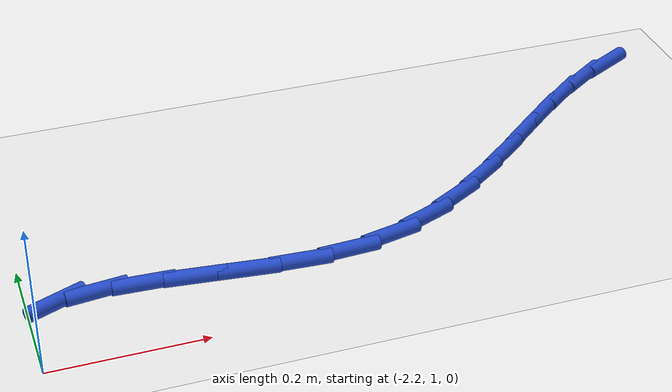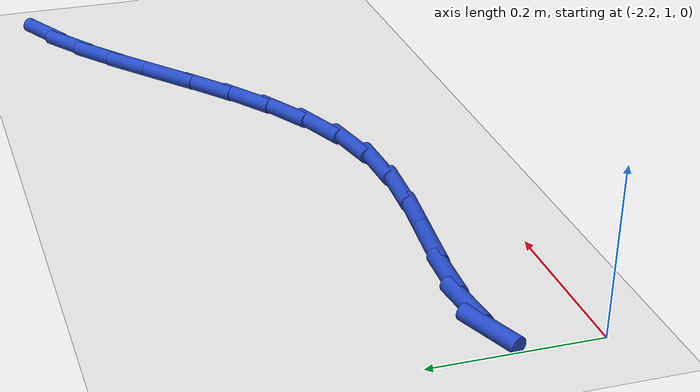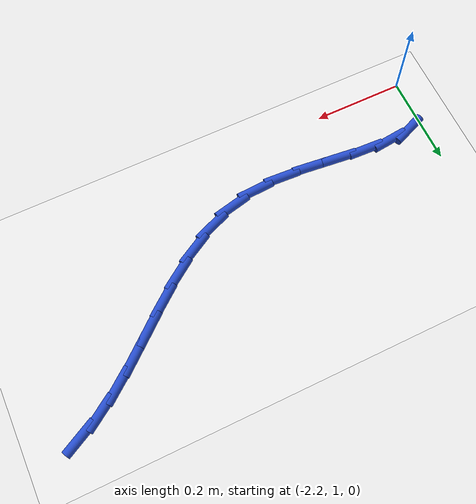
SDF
<sdf version="1.6">
 <world name="default">
  <model name="ground_plane">
   <static>1</static>
   <link name="link">
    <collision name="collision">
     <geometry><plane><normal>0 0 1</normal><size>100 100</size></plane></geometry>
     <surface><friction><ode><mu>100</mu><mu2>50</mu2></ode></friction></surface>
    </collision>
    <visual name="visual">
     <cast_shadows>0</cast_shadows>
     <geometry><plane><normal>0 0 1</normal><size>100 100</size></plane></geometry>
     <material>
      <script><uri>file://media/materials/scripts/gazebo.material</uri><name>Gazebo/WhiteGlow</name></script>
     </material>
    </visual>
   </link>
  </model>
  <model name="line">
   <link name="link_34">
    <pose>-1.277492333680312 1.4284284520716457 0.01 0 1.57 0.48630207867308334</pose>
    <collision name="collision">
     <geometry><cylinder><radius>0.01</radius><length>0.08</length></cylinder></geometry>
    </collision>
    <visual name="visual">
     <material>
      <script><name>Gazebo/Blue</name><uri>file://media/materials/scripts/gazebo.material</uri></script>
     </material>
     <geometry><cylinder><radius>0.01</radius><length>0.08</length></cylinder></geometry>
    </visual>
   </link>
   <link name="link_35">
    <pose>-1.328409103685491 1.4015114296683824 0.01 0 1.57 0.5987223878394674</pose>
    <collision name="collision">
     <geometry><cylinder><radius>0.01</radius><length>0.08</length></cylinder></geometry>
    </collision>
    <visual name="visual">
     <material>
      <script><name>Gazebo/Blue</name><uri>file://media/materials/scripts/gazebo.material</uri></script>
     </material>
     <geometry><cylinder><radius>0.01</radius><length>0.08</length></cylinder></geometry>
    </visual>
   </link>
   <link name="link_36">
    <pose>-1.3776648218462089 1.3679060827481828 0.01 0 1.57 0.6699513277519925</pose>
    <collision name="collision">
     <geometry><cylinder><radius>0.01</radius><length>0.08</length></cylinder></geometry>
    </collision>
    <visual name="visual">
     <material>
      <script><name>Gazebo/Blue</name><uri>file://media/materials/scripts/gazebo.material</uri></script>
     </material>
     <geometry><cylinder><radius>0.01</radius><length>0.08</length></cylinder></geometry>
    </visual>
   </link>
   <link name="link_37">
    <pose>-1.4259525944657796 1.3296537186178912 0.01 0 1.57 0.7050630677154315</pose>
    <collision name="collision">
     <geometry><cylinder><radius>0.01</radius><length>0.08</length></cylinder></geometry>
    </collision>
    <visual name="visual">
     <material>
      <script><name>Gazebo/Blue</name><uri>file://media/materials/scripts/gazebo.material</uri></script>
     </material>
     <geometry><cylinder><radius>0.01</radius><length>0.08</length></cylinder></geometry>
    </visual>
   </link>
   <link name="link_38">
    <pose>-1.473965527847517 1.2887956445843511 0.01 0 1.57 0.7075542569212673</pose>
    <collision name="collision">
     <geometry><cylinder><radius>0.01</radius><length>0.08</length></cylinder></geometry>
    </collision>
    <visual name="visual">
     <material>
      <script><name>Gazebo/Blue</name><uri>file://media/materials/scripts/gazebo.material</uri></script>
     </material>
     <geometry><cylinder><radius>0.01</radius><length>0.08</length></cylinder></geometry>
    </visual>
   </link>
   <link name="link_39">
    <pose>-1.5223967282947348 1.2473731679544067 0.01 0 1.57 0.6785632128013085</pose>
    <collision name="collision">
     <geometry><cylinder><radius>0.01</radius><length>0.08</length></cylinder></geometry>
    </collision>
    <visual name="visual">
     <material>
      <script><name>Gazebo/Blue</name><uri>file://media/materials/scripts/gazebo.material</uri></script>
     </material>
     <geometry><cylinder><radius>0.01</radius><length>0.08</length></cylinder></geometry>
    </visual>
   </link>
   <link name="link_40">
    <pose>-1.571939302110747 1.2074275960349026 0.01 0 1.57 0.6170296724437282</pose>
    <collision name="collision">
     <geometry><cylinder><radius>0.01</radius><length>0.08</length></cylinder></geometry>
    </collision>
    <visual name="visual">
     <material>
      <script><name>Gazebo/Blue</name><uri>file://media/materials/scripts/gazebo.material</uri></script>
     </material>
     <geometry><cylinder><radius>0.01</radius><length>0.08</length></cylinder></geometry>
    </visual>
   </link>
   <link name="link_41">
    <pose>-1.6232863555988675 1.1710002361326823 0.01 0 1.57 0.5205376974459534</pose>
    <collision name="collision">
     <geometry><cylinder><radius>0.01</radius><length>0.08</length></cylinder></geometry>
    </collision>
    <visual name="visual">
     <material>
      <script><name>Gazebo/Blue</name><uri>file://media/materials/scripts/gazebo.material</uri></script>
     </material>
     <geometry><cylinder><radius>0.01</radius><length>0.08</length></cylinder></geometry>
    </visual>
   </link>
   <link name="link_42">
    <pose>-1.6771309950624103 1.140132395554589 0.01 0 1.57 0.3873327205778597</pose>
    <collision name="collision">
     <geometry><cylinder><radius>0.01</radius><length>0.08</length></cylinder></geometry>
    </collision>
    <visual name="visual">
     <material>
      <script><name>Gazebo/Blue</name><uri>file://media/materials/scripts/gazebo.material</uri></script>
     </material>
     <geometry><cylinder><radius>0.01</radius><length>0.08</length></cylinder></geometry>
    </visual>
   </link>
   <link name="link_43">
    <pose>-1.7341663268046885 1.1168653816074676 0.01 0 1.57 0.22008268704885672</pose>
    <collision name="collision">
     <geometry><cylinder><radius>0.01</radius><length>0.08</length></cylinder></geometry>
    </collision>
    <visual name="visual">
     <material>
      <script><name>Gazebo/Blue</name><uri>file://media/materials/scripts/gazebo.material</uri></script>
     </material>
     <geometry><cylinder><radius>0.01</radius><length>0.08</length></cylinder></geometry>
    </visual>
   </link>
   <link name="link_44">
    <pose>-1.795084010007401 1.1032377154445516 0.01 0 1.57 0.05215917221528918</pose>
    <collision name="collision">
     <geometry><cylinder><radius>0.01</radius><length>0.08</length></cylinder></geometry>
    </collision>
    <visual name="visual">
     <material>
      <script><name>Gazebo/Blue</name><uri>file://media/materials/scripts/gazebo.material</uri></script>
     </material>
     <geometry><cylinder><radius>0.01</radius><length>0.08</length></cylinder></geometry>
    </visual>
   </link>
   <link name="link_45">
    <pose>-1.8598327019083662 1.0998574112550337 0.01 0 1.57 -0.05574662256063953</pose>
    <collision name="collision">
     <geometry><cylinder><radius>0.01</radius><length>0.08</length></cylinder></geometry>
    </collision>
    <visual name="visual">
     <material>
      <script><name>Gazebo/Blue</name><uri>file://media/materials/scripts/gazebo.material</uri></script>
     </material>
     <geometry><cylinder><radius>0.01</radius><length>0.08</length></cylinder></geometry>
    </visual>
   </link>
   <link name="link_46">
    <pose>-1.9264081954051893 1.1035726195271889 0.01 0 1.57 -0.1062631666495172</pose>
    <collision name="collision">
     <geometry><cylinder><radius>0.01</radius><length>0.08</length></cylinder></geometry>
    </collision>
    <visual name="visual">
     <material>
      <script><name>Gazebo/Blue</name><uri>file://media/materials/scripts/gazebo.material</uri></script>
     </material>
     <geometry><cylinder><radius>0.01</radius><length>0.08</length></cylinder></geometry>
    </visual>
   </link>
   <link name="link_47">
    <pose>-1.9924892763402806 1.1106211547954807 0.01 0 1.57 -0.10425399809433808</pose>
    <collision name="collision">
     <geometry><cylinder><radius>0.01</radius><length>0.08</length></cylinder></geometry>
    </collision>
    <visual name="visual">
     <material>
      <script><name>Gazebo/Blue</name><uri>file://media/materials/scripts/gazebo.material</uri></script>
     </material>
     <geometry><cylinder><radius>0.01</radius><length>0.08</length></cylinder></geometry>
    </visual>
   </link>
   <link name="link_48">
    <pose>-2.0557547305560524 1.1172408315943734 0.01 0 1.57 -0.04175604861799084</pose>
    <collision name="collision">
     <geometry><cylinder><radius>0.01</radius><length>0.08</length></cylinder></geometry>
    </collision>
    <visual name="visual">
     <material>
      <script><name>Gazebo/Blue</name><uri>file://media/materials/scripts/gazebo.material</uri></script>
     </material>
     <geometry><cylinder><radius>0.01</radius><length>0.08</length></cylinder></geometry>
    </visual>
   </link>
   <link name="link_49">
    <pose>-2.113883343894918 1.119669464458332 0.01 0 1.57 0.10860074115715232</pose>
    <collision name="collision">
     <geometry><cylinder><radius>0.01</radius><length>0.08</length></cylinder></geometry>
    </collision>
    <visual name="visual">
     <material>
      <script><name>Gazebo/Blue</name><uri>file://media/materials/scripts/gazebo.material</uri></script>
     </material>
     <geometry><cylinder><radius>0.01</radius><length>0.08</length></cylinder></geometry>
    </visual>
   </link>
   <link name="link_50">
    <pose>-2.1645539021992897 1.1141448679218202 0.01 0 1.57 0.38829219019440764</pose>
    <collision name="collision">
     <geometry><cylinder><radius>0.01</radius><length>0.08</length></cylinder></geometry>
    </collision>
    <visual name="visual">
     <material>
      <script><name>Gazebo/Blue</name><uri>file://media/materials/scripts/gazebo.material</uri></script>
     </material>
     <geometry><cylinder><radius>0.01</radius><length>0.08</length></cylinder></geometry>
    </visual>
   </link>
  </model>
 </world>
</sdf>
